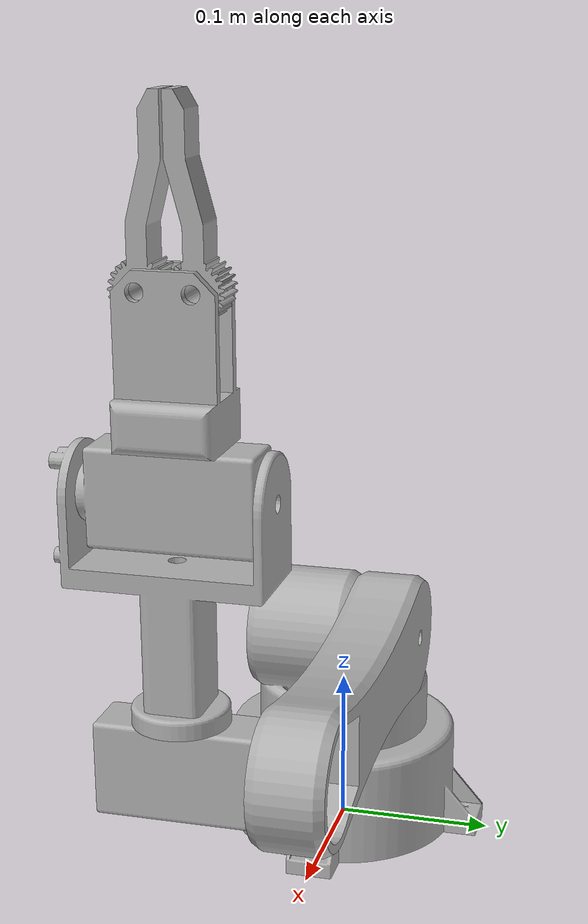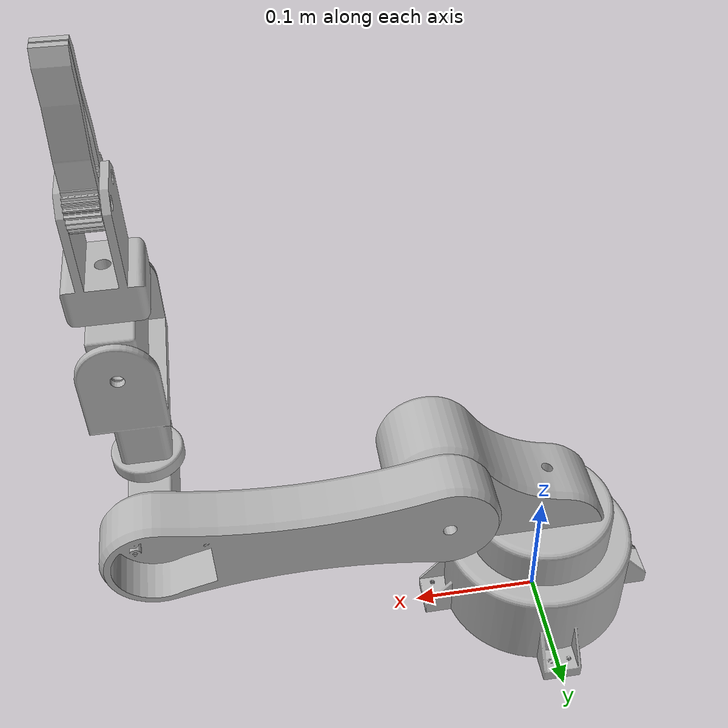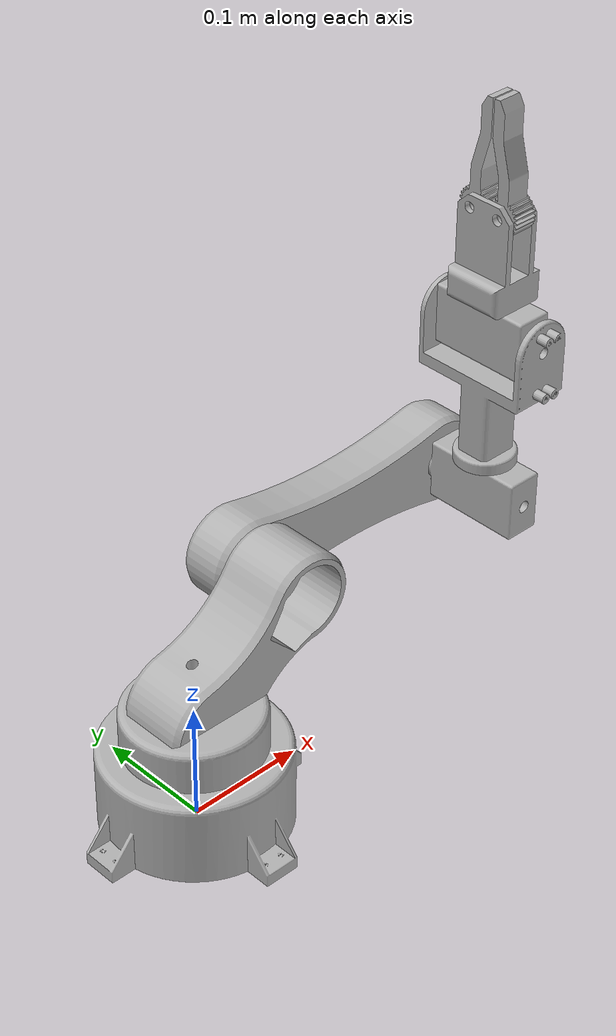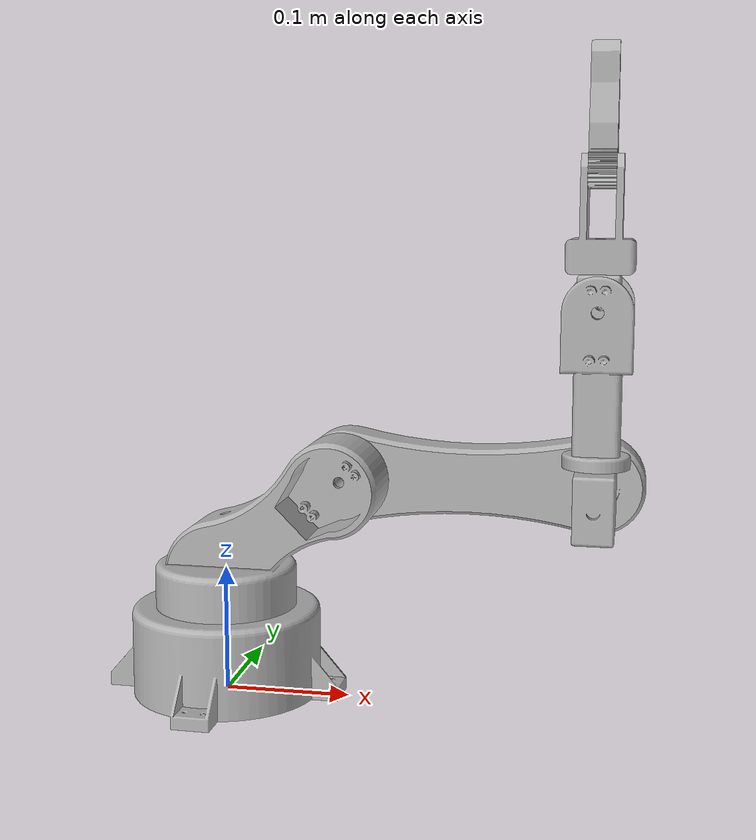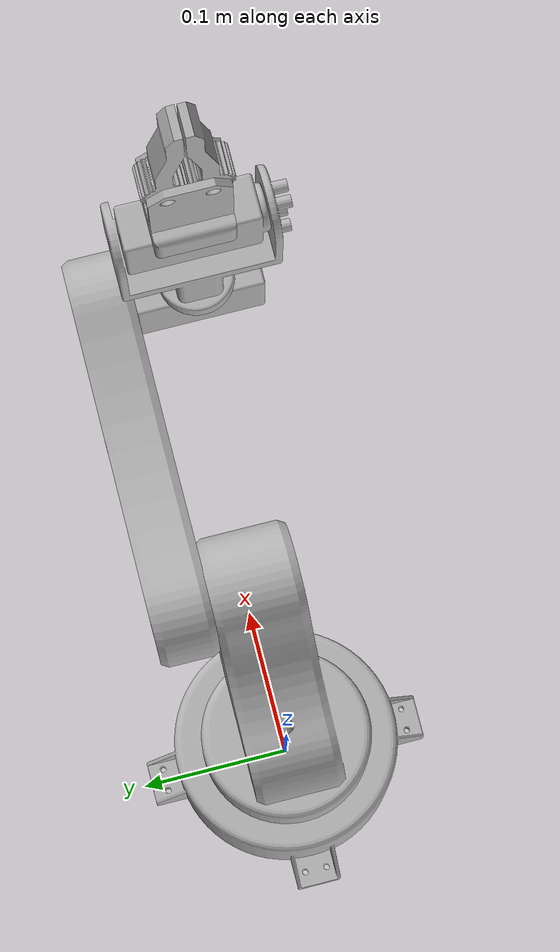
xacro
<?xml version="1.0" ?>
<robot name="primary_manipulator" xmlns:xacro="http://www.ros.org/wiki/xacro">

<xacro:include filename="$(find cooking_robot)/urdf/materials.xacro" />
<xacro:include filename="$(find cooking_robot)/urdf/primary_manipulator.trans" />
<xacro:include filename="$(find cooking_robot)/urdf/primary_manipulator.gazebo" />
<link name="world">

</link>
<link name="base_link">
  <inertial>
    <origin xyz="3.957301377503479e-05 5.550169171063192e-09 0.0412767136677171" rpy="0 0 0"/>
    <mass value="2.066513090661844"/>
    <inertia ixx="0.006011" iyy="0.006018" izz="0.009572" ixy="-0.0" iyz="-0.0" ixz="-2e-06"/>
  </inertial>
  <visual>
    <origin xyz="0 0 0" rpy="0 0 0"/>
    <geometry>
      <mesh filename="package://cooking_robot/meshes/base_link.stl" scale="0.001 0.001 0.001"/>
    </geometry>
    <material name="silver"/>
  </visual>
  <collision>
    <origin xyz="0 0 0" rpy="0 0 0"/>
    <geometry>
      <mesh filename="package://cooking_robot/meshes/base_link.stl" scale="0.001 0.001 0.001"/>
    </geometry>
  </collision>
</link>
<joint name="j0" type="fixed">
  <parent link="world"/>
  <child link="base_link"/>
  <origin xyz="0.0 0.0 0.0" rpy="0.0 0.0 0.0"/>
</joint>

<link name="link1_1">
  <inertial>
    <origin xyz="0.0230637786360918 0.001341583374922287 0.046898108796872714" rpy="0 0 0"/>
    <mass value="5.742113360427433"/>
    <inertia ixx="0.009895" iyy="0.017173" izz="0.013403" ixy="-0.000482" iyz="-0.000382" ixz="-0.005786"/>
  </inertial>
  <visual>
    <origin xyz="-0.0 -0.0 -0.07" rpy="0 0 0"/>
    <geometry>
      <mesh filename="package://cooking_robot/meshes/link1_1.stl" scale="0.001 0.001 0.001"/>
    </geometry>
    <material name="silver"/>
  </visual>
  <collision>
    <origin xyz="-0.0 -0.0 -0.07" rpy="0 0 0"/>
    <geometry>
      <mesh filename="package://cooking_robot/meshes/link1_1.stl" scale="0.001 0.001 0.001"/>
    </geometry>
  </collision>
</link>

<link name="link2_1">
  <inertial>
    <origin xyz="0.08046108742370087 0.03265671734962108 -2.2244900366175102e-11" rpy="0 0 0"/>
    <mass value="4.349837143782598"/>
    <inertia ixx="0.002088" iyy="0.025024" izz="0.024204" ixy="0.000167" iyz="0.0" ixz="-0.0"/>
  </inertial>
  <visual>
    <origin xyz="-0.09 -0.015 -0.17" rpy="0 0 0"/>
    <geometry>
      <mesh filename="package://cooking_robot/meshes/link2_1.stl" scale="0.001 0.001 0.001"/>
    </geometry>
    <material name="silver"/>
  </visual>
  <collision>
    <origin xyz="-0.09 -0.015 -0.17" rpy="0 0 0"/>
    <geometry>
      <mesh filename="package://cooking_robot/meshes/link2_1.stl" scale="0.001 0.001 0.001"/>
    </geometry>
  </collision>
</link>

<link name="link3-2_joint_1">
  <inertial>
    <origin xyz="-5.774756728360586e-08 -0.04520965854239076 0.0029520539853202243" rpy="0 0 0"/>
    <mass value="0.48926159770428396"/>
    <inertia ixx="0.0005" iyy="0.000169" izz="0.000447" ixy="0.0" iyz="2e-06" ixz="-0.0"/>
  </inertial>
  <visual>
    <origin xyz="-0.29 -0.034 -0.17" rpy="0 0 0"/>
    <geometry>
      <mesh filename="package://cooking_robot/meshes/link3-2_joint_1.stl" scale="0.001 0.001 0.001"/>
    </geometry>
    <material name="silver"/>
  </visual>
  <collision>
    <origin xyz="-0.29 -0.034 -0.17" rpy="0 0 0"/>
    <geometry>
      <mesh filename="package://cooking_robot/meshes/link3-2_joint_1.stl" scale="0.001 0.001 0.001"/>
    </geometry>
  </collision>
</link>

<link name="link3_1">
  <inertial>
    <origin xyz="2.4722203617599803e-08 -0.0005180384055503261 0.06152943396730581" rpy="0 0 0"/>
    <mass value="1.241116625279245"/>
    <inertia ixx="0.002432" iyy="0.001722" izz="0.001103" ixy="0.0" iyz="3e-05" ixz="-0.0"/>
  </inertial>
  <visual>
    <origin xyz="-0.29 0.0135 -0.195" rpy="0 0 0"/>
    <geometry>
      <mesh filename="package://cooking_robot/meshes/link3_1.stl" scale="0.001 0.001 0.001"/>
    </geometry>
    <material name="silver"/>
  </visual>
  <collision>
    <origin xyz="-0.29 0.0135 -0.195" rpy="0 0 0"/>
    <geometry>
      <mesh filename="package://cooking_robot/meshes/link3_1.stl" scale="0.001 0.001 0.001"/>
    </geometry>
  </collision>
</link>

<link name="gripper_joint1_1">
  <inertial>
    <origin xyz="-2.1296181484942167e-10 0.04520965864214052 0.002952063965921292" rpy="0 0 0"/>
    <mass value="0.4892591904426007"/>
    <inertia ixx="0.0005" iyy="0.000169" izz="0.000447" ixy="0.0" iyz="-2e-06" ixz="0.0"/>
  </inertial>
  <visual>
    <origin xyz="-0.29 0.0595 -0.3125" rpy="0 0 0"/>
    <geometry>
      <mesh filename="package://cooking_robot/meshes/gripper_joint1_1.stl" scale="0.001 0.001 0.001"/>
    </geometry>
    <material name="silver"/>
  </visual>
  <collision>
    <origin xyz="-0.29 0.0595 -0.3125" rpy="0 0 0"/>
    <geometry>
      <mesh filename="package://cooking_robot/meshes/gripper_joint1_1.stl" scale="0.001 0.001 0.001"/>
    </geometry>
  </collision>
</link>

<link name="link4_1">
  <inertial>
    <origin xyz="0.00018388764296389803 0.00027077966008015597 0.025509584507645178" rpy="0 0 0"/>
    <mass value="0.6801945828664837"/>
    <inertia ixx="0.000469" iyy="0.000457" izz="0.000272" ixy="0.0" iyz="0.0" ixz="0.0"/>
  </inertial>
  <visual>
    <origin xyz="-0.29 0.012 -0.3375" rpy="0 0 0"/>
    <geometry>
      <mesh filename="package://cooking_robot/meshes/link4_1.stl" scale="0.001 0.001 0.001"/>
    </geometry>
    <material name="silver"/>
  </visual>
  <collision>
    <origin xyz="-0.29 0.012 -0.3375" rpy="0 0 0"/>
    <geometry>
      <mesh filename="package://cooking_robot/meshes/link4_1.stl" scale="0.001 0.001 0.001"/>
    </geometry>
  </collision>
</link>

<link name="Spur_Gear__24_teeth___1__1">
  <inertial>
    <origin xyz="-0.010000185471326528 -0.0027254969628815826 0.030042323969180884" rpy="0 0 0"/>
    <mass value="0.19629204650966112"/>
    <inertia ixx="0.000182" iyy="0.000182" izz="1.4e-05" ixy="0.0" iyz="1.9e-05" ixz="0.0"/>
  </inertial>
  <visual>
    <origin xyz="-0.30018 -0.001765 -0.4125" rpy="0 0 0"/>
    <geometry>
      <mesh filename="package://cooking_robot/meshes/Spur_Gear__24_teeth___1__1.stl" scale="0.001 0.001 0.001"/>
    </geometry>
    <material name="silver"/>
  </visual>
  <collision>
    <origin xyz="-0.30018 -0.001765 -0.4125" rpy="0 0 0"/>
    <geometry>
      <mesh filename="package://cooking_robot/meshes/Spur_Gear__24_teeth___1__1.stl" scale="0.001 0.001 0.001"/>
    </geometry>
  </collision>
</link>

<link name="Spur_Gear__24_teeth__1">
  <inertial>
    <origin xyz="-0.010000185471326528 0.0027270129816117927 0.03010843991676121" rpy="0 0 0"/>
    <mass value="0.19647451990768114"/>
    <inertia ixx="0.000183" iyy="0.000182" izz="1.4e-05" ixy="0.0" iyz="-1.9e-05" ixz="0.0"/>
  </inertial>
  <visual>
    <origin xyz="-0.30018 0.025235 -0.4125" rpy="0 0 0"/>
    <geometry>
      <mesh filename="package://cooking_robot/meshes/Spur_Gear__24_teeth__1.stl" scale="0.001 0.001 0.001"/>
    </geometry>
    <material name="silver"/>
  </visual>
  <collision>
    <origin xyz="-0.30018 0.025235 -0.4125" rpy="0 0 0"/>
    <geometry>
      <mesh filename="package://cooking_robot/meshes/Spur_Gear__24_teeth__1.stl" scale="0.001 0.001 0.001"/>
    </geometry>
  </collision>
</link>

<joint name="joint_base" type="revolute">
  <origin xyz="0.0 0.0 0.07" rpy="0 0 0"/>
  <parent link="base_link"/>
  <child link="link1_1"/>
  <axis xyz="0.0 0.0 -1.0"/>
  <limit lower="-1.571" upper="1.571" effort="100" velocity="100"/>

</joint>

<joint name="joint_link_1" type="revolute">
  <origin xyz="0.09 0.015 0.1" rpy="0 0 0"/>
  <parent link="link1_1"/>
  <child link="link2_1"/>
  <axis xyz="-0.0 1.0 0.0"/>
  <limit lower="-2.42" upper="0.71" effort="100" velocity="100"/>
</joint>

<joint name="joint_link_2" type="revolute">
  <origin xyz="0.2 0.019 0.0" rpy="0 0 0"/>
  <parent link="link2_1"/>
  <child link="link3-2_joint_1"/>
  <axis xyz="0.0 1.0 0.0"/>
  <limit lower="-1.0" upper="3.14" effort="100" velocity="100"/>
</joint>

<joint name="joint_link_3" type="revolute">
  <origin xyz="0.0 -0.0475 0.025" rpy="0 0 0"/>
  <parent link="link3-2_joint_1"/>
  <child link="link3_1"/>
  <axis xyz="0.0 0.0 -1.0"/>
  <limit lower="-1.571" upper="1.571" effort="100" velocity="100"/>
</joint>

<joint name="joint_link_4" type="revolute">
  <origin xyz="0.0 -0.046 0.1175" rpy="0 0 0"/>
  <parent link="link3_1"/>
  <child link="gripper_joint1_1"/>
  <axis xyz="-0.0 -1.0 0.0"/>
  <limit lower="-1.571" upper="1.571" effort="100" velocity="100"/>
</joint>

<joint name="joint_gripper" type="revolute">
  <origin xyz="0.0 0.0475 0.025" rpy="0 0 0"/>
  <parent link="gripper_joint1_1"/>
  <child link="link4_1"/>
  <axis xyz="0.0 0.0 -1.0"/>
  <limit lower="-1.571" upper="1.571" effort="100" velocity="100"/>
</joint>

<joint name="joint_gripper_left" type="revolute">
  <origin xyz="0.01018 0.013765 0.075" rpy="0 0 0"/>
  <parent link="link4_1"/>
  <child link="Spur_Gear__24_teeth___1__1"/>
  <axis xyz="1.0 -0.0 0.0"/>
  <limit lower="-0.68" upper="0" effort="100" velocity="100"/>
</joint>

<joint name="joint_gripper_right" type="revolute">
  <origin xyz="0.01018 -0.013235 0.075" rpy="0 0 0"/>
  <parent link="link4_1"/>
  <child link="Spur_Gear__24_teeth__1"/>
  <axis xyz="1.0 -0.0 0.0"/>
  <limit lower="0" upper="0.68" effort="100" velocity="100"/>
</joint>

</robot>

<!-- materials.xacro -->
<robot name="primary_manipulator" xmlns:xacro="http://www.ros.org/wiki/xacro" >

<material name="silver">
  <color rgba="0.700 0.700 0.700 1.000"/>
</material>

</robot>

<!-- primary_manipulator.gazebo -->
<robot name="primary_manipulator" xmlns:xacro="http://www.ros.org/wiki/xacro" >

<xacro:property name="body_color" value="Gazebo/Silver" />

<gazebo>
  <plugin name="control" filename="libgazebo_ros_control.so"/>
</gazebo>
<gazebo reference="base_link">
  <material>${body_color}</material>
  <mu1>0.2</mu1>
  <mu2>0.2</mu2>
  <selfCollide>true</selfCollide>
  <gravity>true</gravity>
</gazebo>

<gazebo reference="link1_1">
  <material>${body_color}</material>
  <mu1>0.2</mu1>
  <mu2>0.2</mu2>
  <selfCollide>true</selfCollide>
</gazebo>

<gazebo reference="link2_1">
  <material>${body_color}</material>
  <mu1>0.2</mu1>
  <mu2>0.2</mu2>
  <selfCollide>true</selfCollide>
</gazebo>

<gazebo reference="link3-2_joint_1">
  <material>${body_color}</material>
  <mu1>0.2</mu1>
  <mu2>0.2</mu2>
  <selfCollide>true</selfCollide>
</gazebo>

<gazebo reference="link3_1">
  <material>${body_color}</material>
  <mu1>0.2</mu1>
  <mu2>0.2</mu2>
  <selfCollide>true</selfCollide>
</gazebo>

<gazebo reference="gripper_joint1_1">
  <material>${body_color}</material>
  <mu1>0.2</mu1>
  <mu2>0.2</mu2>
  <selfCollide>true</selfCollide>
</gazebo>

<gazebo reference="link4_1">
  <material>${body_color}</material>
  <mu1>0.2</mu1>
  <mu2>0.2</mu2>
  <selfCollide>true</selfCollide>
</gazebo>

<gazebo reference="Spur_Gear__24_teeth__1">
  <material>${body_color}</material>
  <mu1>0.2</mu1>
  <mu2>0.2</mu2>
  <selfCollide>true</selfCollide>
</gazebo>

<gazebo reference="Spur_Gear__24_teeth___1__1">
  <material>${body_color}</material>
  <mu1>0.2</mu1>
  <mu2>0.2</mu2>
  <selfCollide>true</selfCollide>
</gazebo>

</robot>
